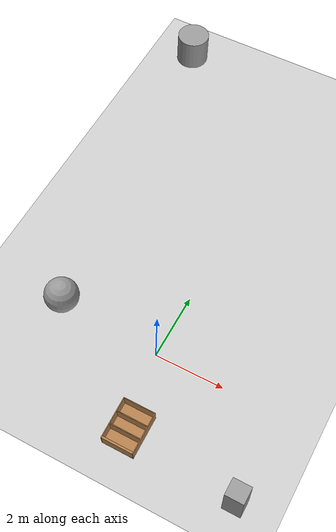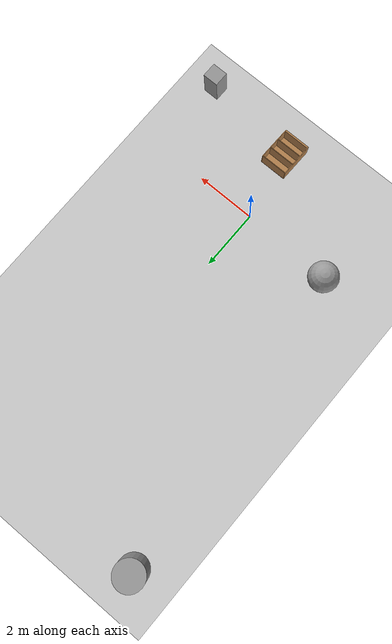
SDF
<sdf version="1.7">
 <world name="default">
  <light name="sun" type="directional">
   <pose>0 0 10 0 -0 0</pose>
   <diffuse>0.8 0.8 0.8 1</diffuse>
   <specular>0.2 0.2 0.2 1</specular>
   <attenuation>
    <range>1000</range>
    <constant>0.9</constant>
    <linear>0.01</linear>
    <quadratic>0.001</quadratic>
   </attenuation>
   <direction>-0.5 0.1 -0.9</direction>
   <spot><inner_angle>0</inner_angle><outer_angle>0</outer_angle><falloff>0</falloff></spot>
  </light>
  <model name="ground_plane">
   <static>1</static>
   <link name="link">
    <collision name="collision">
     <geometry><plane><normal>0 0 1</normal><size>100 100</size></plane></geometry>
     <surface><friction><ode><mu>100</mu><mu2>50</mu2></ode></friction></surface>
    </collision>
    <visual name="visual">
     <cast_shadows>0</cast_shadows>
     <geometry><plane><normal>0 0 1</normal><size>100 100</size></plane></geometry>
     <material>
      <script><uri>file://media/materials/scripts/gazebo.material</uri><name>Gazebo/Grey</name></script>
     </material>
    </visual>
   </link>
  </model>
  <gravity>0 0 -9.8</gravity>
  <magnetic_field>6e-06 2.3e-05 -4.2e-05</magnetic_field>
  <atmosphere type="adiabatic"/>
  <physics type="ode">
   <max_step_size>0.001</max_step_size>
   <real_time_factor>1</real_time_factor>
   <real_time_update_rate>1000</real_time_update_rate>
  </physics>
  <scene><ambient>0.4 0.4 0.4 1</ambient><background>0.7 0.7 0.7 1</background><shadows>1</shadows></scene>
  <audio><device>default</device></audio>
  <spherical_coordinates>
   <surface_model>EARTH_WGS84</surface_model>
   <latitude_deg>0</latitude_deg>
   <longitude_deg>0</longitude_deg>
   <elevation>0</elevation>
   <heading_deg>0</heading_deg>
  </spherical_coordinates>
  <model name="unit_box">
   <pose>3.60703 -2.62868 0.484215 0 -0 0</pose>
   <link name="link">
    <inertial>
     <mass>1</mass>
     <inertia>
      <ixx>0.166667</ixx>
      <ixy>0</ixy>
      <ixz>0</ixz>
      <iyy>0.166667</iyy>
      <iyz>0</iyz>
      <izz>0.166667</izz>
     </inertia>
    </inertial>
    <collision name="collision">
     <geometry><box><size>0.520211 0.490788 0.968431</size></box></geometry>
    </collision>
    <visual name="visual">
     <geometry><box><size>0.520211 0.490788 0.968431</size></box></geometry>
     <material>
      <script><name>Gazebo/Grey</name><uri>file://media/materials/scripts/gazebo.material</uri></script>
     </material>
    </visual>
   </link>
  </model>
  <model name="unit_sphere">
   <pose>-3.03555 0.158372 0.5 0 -0 0</pose>
   <link name="link">
    <inertial>
     <mass>1</mass>
     <inertia><ixx>0.1</ixx><ixy>0</ixy><ixz>0</ixz><iyy>0.1</iyy><iyz>0</iyz><izz>0.1</izz></inertia>
    </inertial>
    <collision name="collision"><geometry><sphere><radius>0.5</radius></sphere></geometry></collision>
    <visual name="visual">
     <geometry><sphere><radius>0.5</radius></sphere></geometry>
     <material>
      <script><name>Gazebo/Grey</name><uri>file://media/materials/scripts/gazebo.material</uri></script>
     </material>
    </visual>
   </link>
  </model>
  <model name="unit_cylinder">
   <pose>-4.21352 10.4223 0.499992 -3e-06 3e-06 0</pose>
   <link name="link">
    <inertial>
     <mass>1</mass>
     <inertia><ixx>0.145833</ixx><ixy>0</ixy><ixz>0</ixz><iyy>0.145833</iyy><iyz>0</iyz><izz>0.125</izz></inertia>
    </inertial>
    <collision name="collision">
     <geometry><cylinder><radius>0.5</radius><length>1</length></cylinder></geometry>
    </collision>
    <visual name="visual">
     <geometry><cylinder><radius>0.5</radius><length>1</length></cylinder></geometry>
     <material>
      <script><name>Gazebo/Grey</name><uri>file://media/materials/scripts/gazebo.material</uri></script>
     </material>
    </visual>
   </link>
  </model>
  <model name="bookshelf">
   <static>1</static>
   <link name="link">
    <inertial><mass>1</mass></inertial>
    <collision name="back">
     <pose>0 0.005 0.6 0 -0 0</pose>
     <geometry><box><size>0.9 0.01 1.2</size></box></geometry>
    </collision>
    <visual name="visual1">
     <pose>0 0.005 0.6 0 -0 0</pose>
     <geometry><box><size>0.9 0.01 1.2</size></box></geometry>
     <material>
      <script><uri>file://media/materials/scripts/gazebo.material</uri><name>Gazebo/Wood</name></script>
     </material>
    </visual>
    <collision name="left_side">
     <pose>0.45 -0.195 0.6 0 -0 0</pose>
     <geometry><box><size>0.02 0.4 1.2</size></box></geometry>
    </collision>
    <visual name="visual2">
     <pose>0.45 -0.195 0.6 0 -0 0</pose>
     <geometry><box><size>0.02 0.4 1.2</size></box></geometry>
     <material>
      <script><uri>file://media/materials/scripts/gazebo.material</uri><name>Gazebo/Wood</name></script>
     </material>
    </visual>
    <collision name="right_side">
     <pose>-0.45 -0.195 0.6 0 -0 0</pose>
     <geometry><box><size>0.02 0.4 1.2</size></box></geometry>
    </collision>
    <visual name="visual3">
     <pose>-0.45 -0.195 0.6 0 -0 0</pose>
     <geometry><box><size>0.02 0.4 1.2</size></box></geometry>
     <material>
      <script><uri>file://media/materials/scripts/gazebo.material</uri><name>Gazebo/Wood</name></script>
     </material>
    </visual>
    <collision name="bottom">
     <pose>0 -0.195 0.03 0 -0 0</pose>
     <geometry><box><size>0.88 0.4 0.06</size></box></geometry>
    </collision>
    <visual name="visual4">
     <pose>0 -0.195 0.03 0 -0 0</pose>
     <geometry><box><size>0.88 0.4 0.06</size></box></geometry>
     <material>
      <script><uri>file://media/materials/scripts/gazebo.material</uri><name>Gazebo/Wood</name></script>
     </material>
    </visual>
    <collision name="top">
     <pose>0 -0.195 1.19 0 -0 0</pose>
     <geometry><box><size>0.88 0.4 0.02</size></box></geometry>
    </collision>
    <visual name="visual5">
     <pose>0 -0.195 1.19 0 -0 0</pose>
     <geometry><box><size>0.88 0.4 0.02</size></box></geometry>
     <material>
      <script><uri>file://media/materials/scripts/gazebo.material</uri><name>Gazebo/Wood</name></script>
     </material>
    </visual>
    <collision name="low_shelf">
     <pose>0 -0.195 0.43 0 -0 0</pose>
     <geometry><box><size>0.88 0.4 0.02</size></box></geometry>
    </collision>
    <visual name="visual6">
     <pose>0 -0.195 0.43 0 -0 0</pose>
     <geometry><box><size>0.88 0.4 0.02</size></box></geometry>
     <material>
      <script><uri>file://media/materials/scripts/gazebo.material</uri><name>Gazebo/Wood</name></script>
     </material>
    </visual>
    <collision name="high_shelf">
     <pose>0 -0.195 0.8 0 -0 0</pose>
     <geometry><box><size>0.88 0.4 0.02</size></box></geometry>
    </collision>
    <visual name="visual7">
     <pose>0 -0.195 0.8 0 -0 0</pose>
     <geometry><box><size>0.88 0.4 0.02</size></box></geometry>
     <material>
      <script><uri>file://media/materials/scripts/gazebo.material</uri><name>Gazebo/Wood</name></script>
     </material>
    </visual>
   </link>
   <pose>0.409775 -2.81948 0 -1.47387 0 0</pose>
  </model>
 </world>
</sdf>
